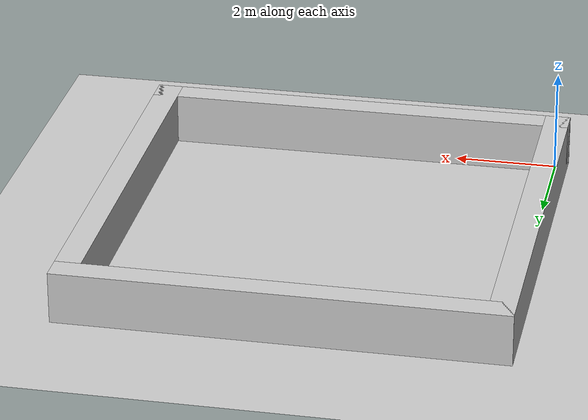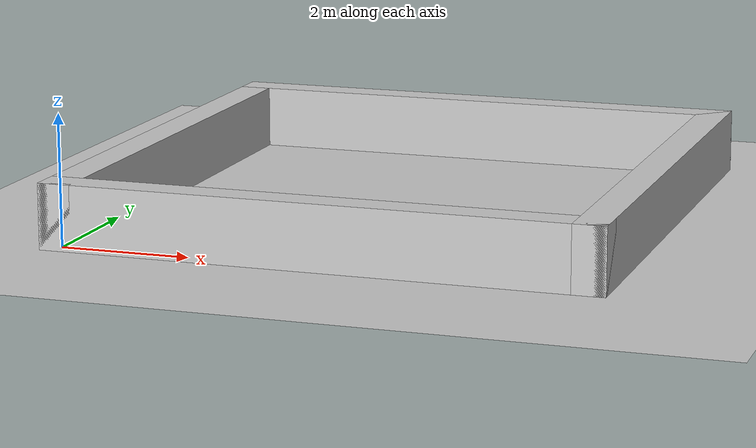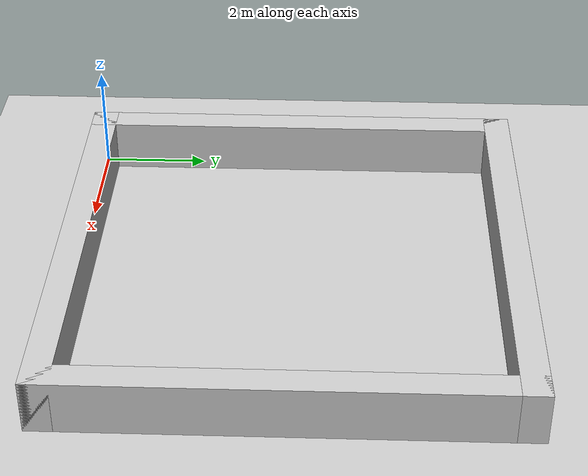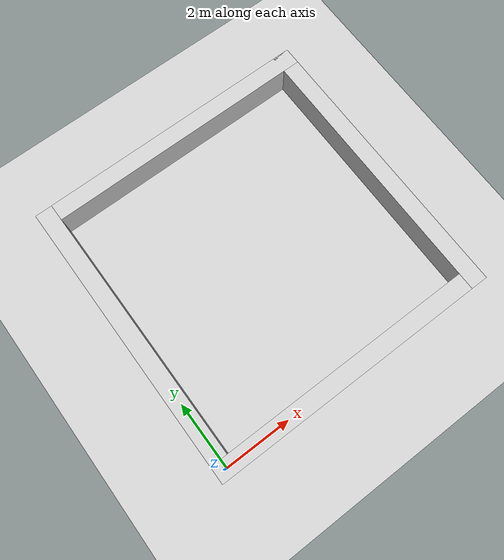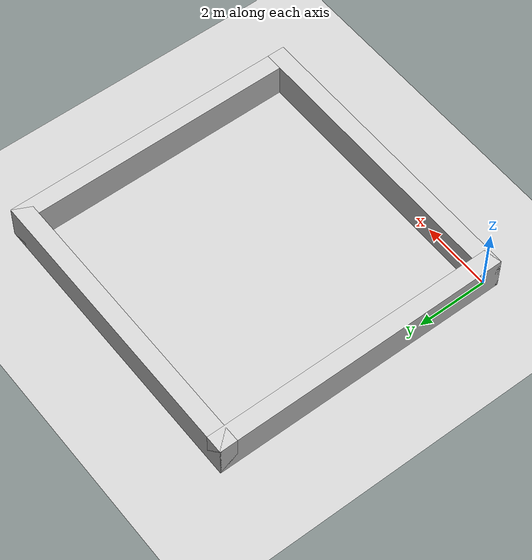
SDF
<?xml version="1.0"?>
<sdf version="1.6">
  <world name="default">

    <physics name="1ms" type="ignored">
      <max_step_size>0.001</max_step_size>
      <real_time_factor>1.0</real_time_factor>
    </physics>
    <plugin filename="gz-sim-physics-system" name="gz::sim::systems::Physics"></plugin>
    <plugin filename="gz-sim-user-commands-system" name="gz::sim::systems::UserCommands"></plugin>
    <plugin filename="gz-sim-scene-broadcaster-system" name="gz::sim::systems::SceneBroadcaster"></plugin>
    <plugin filename="gz-sim-imu-system" name="gz::sim::systems::Imu"></plugin>
    <plugin filename="gz-sim-sensors-system" name="gz::sim::systems::Sensors">
      <render_engine>ogre2</render_engine>
    </plugin>

    <scene>
      <shadows>false</shadows>
    </scene>

    <plugin filename="ignition-gazebo-contact-system"
      name="ignition::gazebo::systems::Contact">
    </plugin>

    <light type="directional" name="sun">
      <cast_shadows>true</cast_shadows>
      <pose>0 0 10 0 0 0</pose>
      <diffuse>0.8 0.8 0.8 1</diffuse>
      <specular>0.2 0.2 0.2 1</specular>
      <attenuation>
        <range>1000</range>
        <constant>0.9</constant>
        <linear>0.01</linear>
        <quadratic>0.001</quadratic>
      </attenuation>
      <direction>-0.5 0.1 -0.9</direction>
    </light>

    <model name="ground_plane">
      <static>true</static>
      <link name="link">
        <collision name="collision">
          <geometry>
            <plane>
              <normal>0 0 1</normal>
              <size>100 100</size>
            </plane>
          </geometry>
        </collision>
        <visual name="visual">
          <geometry>
            <plane>
              <normal>0 0 1</normal>
              <size>100 100</size>
            </plane>
          </geometry>
          <material>
            <ambient>0.8 0.8 0.8 1</ambient>
            <diffuse>0.8 0.8 0.8 1</diffuse>
            <specular>0.8 0.8 0.8 1</specular>
          </material>
        </visual>
      </link>
    </model>

  <model name="wall1">
    <pose>4 8 0.5 0 0 0</pose>
    <static>true</static>
    <link name="link">
      <inertial>
        <mass>1.0</mass>
        <inertia> <!-- inertias are tricky to compute -->
          <!-- http://gazebosim.org/tutorials?tut=inertia&cat=build_robot -->
          <ixx>0.083</ixx>       <!-- for a box: ixx = 0.083 * mass * (y*y + z*z) -->
          <ixy>0.0</ixy>         <!-- for a box: ixy = 0 -->
          <ixz>0.0</ixz>         <!-- for a box: ixz = 0 -->
          <iyy>0.083</iyy>       <!-- for a box: iyy = 0.083 * mass * (x*x + z*z) -->
          <iyz>0.0</iyz>         <!-- for a box: iyz = 0 -->
          <izz>0.083</izz>       <!-- for a box: izz = 0.083 * mass * (x*x + y*y) -->
        </inertia>
      </inertial>
      <collision name="collision">
        <geometry>
          <box>
            <size>8.5 0.5 1</size>
          </box>
        </geometry>
      </collision>
      <visual name="visual">
        <geometry>
          <box>
            <size>8.5 0.5 1</size>
          </box>
        </geometry>
        <material>
          <ambient>0.8 0.8 0.8 1</ambient>
          <diffuse>0.8 0.8 0.8 1</diffuse>
          <specular>0.8 0.8 0.8 1</specular>
        </material>
      </visual>
    </link>
  </model>

  <model name="wall2">
    <pose>4 0 0.5 0 0 0</pose>
    <static>true</static>
    <link name="link">
      <inertial>
        <mass>1.0</mass>
        <inertia> <!-- inertias are tricky to compute -->
          <!-- http://gazebosim.org/tutorials?tut=inertia&cat=build_robot -->
          <ixx>0.083</ixx>       <!-- for a box: ixx = 0.083 * mass * (y*y + z*z) -->
          <ixy>0.0</ixy>         <!-- for a box: ixy = 0 -->
          <ixz>0.0</ixz>         <!-- for a box: ixz = 0 -->
          <iyy>0.083</iyy>       <!-- for a box: iyy = 0.083 * mass * (x*x + z*z) -->
          <iyz>0.0</iyz>         <!-- for a box: iyz = 0 -->
          <izz>0.083</izz>       <!-- for a box: izz = 0.083 * mass * (x*x + y*y) -->
        </inertia>
      </inertial>
      <collision name="collision">
        <geometry>
          <box>
            <size>8.5 0.5 1</size>
          </box>
        </geometry>
      </collision>
      <visual name="visual">
        <geometry>
          <box>
            <size>8.5 0.5 1</size>
          </box>
        </geometry>
        <material>
          <ambient>0.8 0.8 0.8 1</ambient>
          <diffuse>0.8 0.8 0.8 1</diffuse>
          <specular>0.8 0.8 0.8 1</specular>
        </material>
      </visual>
    </link>
  </model>

  <model name="wall3">
    <pose>0 4 0.5 0 0 0</pose>
    <static>true</static>
    <link name="link">
      <inertial>
        <mass>1.0</mass>
        <inertia> <!-- inertias are tricky to compute -->
          <!-- http://gazebosim.org/tutorials?tut=inertia&cat=build_robot -->
          <ixx>0.083</ixx>       <!-- for a box: ixx = 0.083 * mass * (y*y + z*z) -->
          <ixy>0.0</ixy>         <!-- for a box: ixy = 0 -->
          <ixz>0.0</ixz>         <!-- for a box: ixz = 0 -->
          <iyy>0.083</iyy>       <!-- for a box: iyy = 0.083 * mass * (x*x + z*z) -->
          <iyz>0.0</iyz>         <!-- for a box: iyz = 0 -->
          <izz>0.083</izz>       <!-- for a box: izz = 0.083 * mass * (x*x + y*y) -->
        </inertia>
      </inertial>
      <collision name="collision">
        <geometry>
          <box>
            <size>0.5 8.5 1</size>
          </box>
        </geometry>
      </collision>
      <visual name="visual">
        <geometry>
          <box>
            <size>0.5 8.5 1</size>
          </box>
        </geometry>
        <material>
          <ambient>0.8 0.8 0.8 1</ambient>
          <diffuse>0.8 0.8 0.8 1</diffuse>
          <specular>0.8 0.8 0.8 1</specular>
        </material>
      </visual>
    </link>
  </model>

  <model name="wall4">
    <pose>8 4 0.5 0 0 0</pose>
    <static>true</static>
    <link name="link">
      <inertial>
        <mass>1.0</mass>
        <inertia> <!-- inertias are tricky to compute -->
          <!-- http://gazebosim.org/tutorials?tut=inertia&cat=build_robot -->
          <ixx>0.083</ixx>       <!-- for a box: ixx = 0.083 * mass * (y*y + z*z) -->
          <ixy>0.0</ixy>         <!-- for a box: ixy = 0 -->
          <ixz>0.0</ixz>         <!-- for a box: ixz = 0 -->
          <iyy>0.083</iyy>       <!-- for a box: iyy = 0.083 * mass * (x*x + z*z) -->
          <iyz>0.0</iyz>         <!-- for a box: iyz = 0 -->
          <izz>0.083</izz>       <!-- for a box: izz = 0.083 * mass * (x*x + y*y) -->
        </inertia>
      </inertial>
      <collision name="collision">
        <geometry>
          <box>
            <size>0.5 8.5 1</size>
          </box>
        </geometry>
      </collision>
      <visual name="visual">
        <geometry>
          <box>
            <size>0.5 8.5 1</size>
          </box>
        </geometry>
        <material>
          <ambient>0.8 0.8 0.8 1</ambient>
          <diffuse>0.8 0.8 0.8 1</diffuse>
          <specular>0.8 0.8 0.8 1</specular>
        </material>
      </visual>
    </link>
  </model>
  </world>
</sdf>
